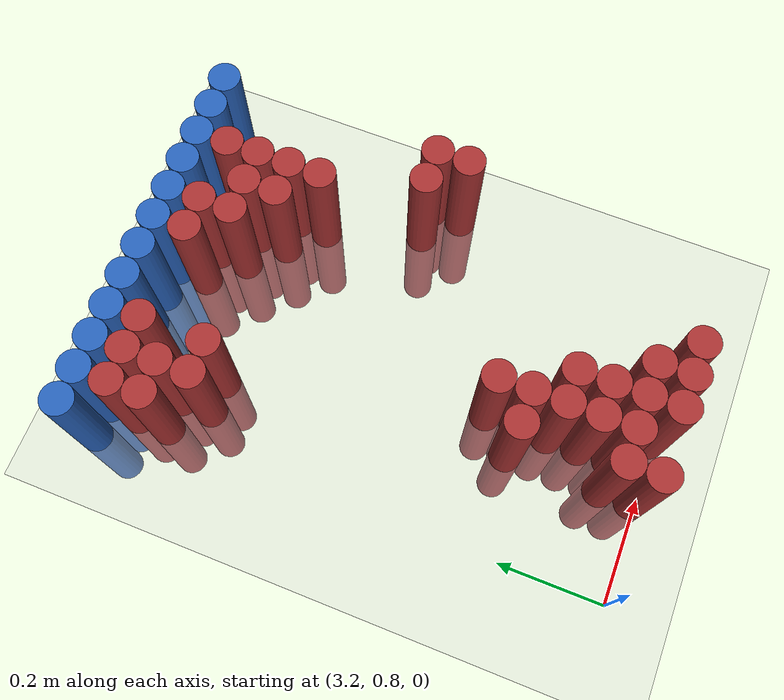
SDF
<sdf version="1.6">
 <world name="default">
  <model name="ground_plane">
   <static>1</static>
   <link name="link">
    <collision name="collision">
     <geometry><plane><normal>0 0 1</normal><size>100 100</size></plane></geometry>
     <surface><friction><ode><mu>100</mu><mu2>50</mu2></ode></friction></surface>
    </collision>
    <visual name="visual">
     <cast_shadows>0</cast_shadows>
     <geometry><plane><normal>0 0 1</normal><size>100 100</size></plane></geometry>
     <material>
      <script><uri>file://media/materials/scripts/gazebo.material</uri><name>Gazebo/Grey</name></script>
     </material>
    </visual>
   </link>
  </model>
  <model name="unit_cylinder_113">
   <static>1</static>
   <pose>3.150000 1.770000 0.000000 0.000000 0.000000 0.000000</pose>
   <link name="link">
    <inertial>
     <mass>1</mass>
     <inertia><ixx>0.145833</ixx><ixy>0</ixy><ixz>0</ixz><iyy>0.145833</iyy><iyz>0</iyz><izz>0.125</izz></inertia>
    </inertial>
    <collision name="collision">
     <geometry><cylinder><radius>0.030000</radius><length>0.5</length></cylinder></geometry>
    </collision>
    <visual name="visual">
     <geometry><cylinder><radius>0.030000</radius><length>0.5</length></cylinder></geometry>
     <material>
      <ambient>0.152000 0.379000 0.720000 1</ambient>
      <diffuse>0.152000 0.379000 0.720000 1</diffuse>
     </material>
     <material>
      <script><name>Gazebo/Grey</name><uri>file://media/materials/scripts/gazebo.material</uri></script>
     </material>
    </visual>
   </link>
  </model>
  <model name="unit_cylinder_114">
   <static>1</static>
   <pose>3.210000 1.770000 0.000000 0.000000 0.000000 0.000000</pose>
   <link name="link">
    <inertial>
     <mass>1</mass>
     <inertia><ixx>0.145833</ixx><ixy>0</ixy><ixz>0</ixz><iyy>0.145833</iyy><iyz>0</iyz><izz>0.125</izz></inertia>
    </inertial>
    <collision name="collision">
     <geometry><cylinder><radius>0.030000</radius><length>0.5</length></cylinder></geometry>
    </collision>
    <visual name="visual">
     <geometry><cylinder><radius>0.030000</radius><length>0.5</length></cylinder></geometry>
     <material>
      <ambient>0.152000 0.379000 0.720000 1</ambient>
      <diffuse>0.152000 0.379000 0.720000 1</diffuse>
     </material>
     <material>
      <script><name>Gazebo/Grey</name><uri>file://media/materials/scripts/gazebo.material</uri></script>
     </material>
    </visual>
   </link>
  </model>
  <model name="unit_cylinder_115">
   <static>1</static>
   <pose>3.270000 1.770000 0.000000 0.000000 0.000000 0.000000</pose>
   <link name="link">
    <inertial>
     <mass>1</mass>
     <inertia><ixx>0.145833</ixx><ixy>0</ixy><ixz>0</ixz><iyy>0.145833</iyy><iyz>0</iyz><izz>0.125</izz></inertia>
    </inertial>
    <collision name="collision">
     <geometry><cylinder><radius>0.030000</radius><length>0.5</length></cylinder></geometry>
    </collision>
    <visual name="visual">
     <geometry><cylinder><radius>0.030000</radius><length>0.5</length></cylinder></geometry>
     <material>
      <ambient>0.152000 0.379000 0.720000 1</ambient>
      <diffuse>0.152000 0.379000 0.720000 1</diffuse>
     </material>
     <material>
      <script><name>Gazebo/Grey</name><uri>file://media/materials/scripts/gazebo.material</uri></script>
     </material>
    </visual>
   </link>
  </model>
  <model name="unit_cylinder_116">
   <static>1</static>
   <pose>3.330000 1.770000 0.000000 0.000000 0.000000 0.000000</pose>
   <link name="link">
    <inertial>
     <mass>1</mass>
     <inertia><ixx>0.145833</ixx><ixy>0</ixy><ixz>0</ixz><iyy>0.145833</iyy><iyz>0</iyz><izz>0.125</izz></inertia>
    </inertial>
    <collision name="collision">
     <geometry><cylinder><radius>0.030000</radius><length>0.5</length></cylinder></geometry>
    </collision>
    <visual name="visual">
     <geometry><cylinder><radius>0.030000</radius><length>0.5</length></cylinder></geometry>
     <material>
      <ambient>0.152000 0.379000 0.720000 1</ambient>
      <diffuse>0.152000 0.379000 0.720000 1</diffuse>
     </material>
     <material>
      <script><name>Gazebo/Grey</name><uri>file://media/materials/scripts/gazebo.material</uri></script>
     </material>
    </visual>
   </link>
  </model>
  <model name="unit_cylinder_117">
   <static>1</static>
   <pose>3.390000 1.770000 0.000000 0.000000 0.000000 0.000000</pose>
   <link name="link">
    <inertial>
     <mass>1</mass>
     <inertia><ixx>0.145833</ixx><ixy>0</ixy><ixz>0</ixz><iyy>0.145833</iyy><iyz>0</iyz><izz>0.125</izz></inertia>
    </inertial>
    <collision name="collision">
     <geometry><cylinder><radius>0.030000</radius><length>0.5</length></cylinder></geometry>
    </collision>
    <visual name="visual">
     <geometry><cylinder><radius>0.030000</radius><length>0.5</length></cylinder></geometry>
     <material>
      <ambient>0.152000 0.379000 0.720000 1</ambient>
      <diffuse>0.152000 0.379000 0.720000 1</diffuse>
     </material>
     <material>
      <script><name>Gazebo/Grey</name><uri>file://media/materials/scripts/gazebo.material</uri></script>
     </material>
    </visual>
   </link>
  </model>
  <model name="unit_cylinder_118">
   <static>1</static>
   <pose>3.450000 1.770000 0.000000 0.000000 0.000000 0.000000</pose>
   <link name="link">
    <inertial>
     <mass>1</mass>
     <inertia><ixx>0.145833</ixx><ixy>0</ixy><ixz>0</ixz><iyy>0.145833</iyy><iyz>0</iyz><izz>0.125</izz></inertia>
    </inertial>
    <collision name="collision">
     <geometry><cylinder><radius>0.030000</radius><length>0.5</length></cylinder></geometry>
    </collision>
    <visual name="visual">
     <geometry><cylinder><radius>0.030000</radius><length>0.5</length></cylinder></geometry>
     <material>
      <ambient>0.152000 0.379000 0.720000 1</ambient>
      <diffuse>0.152000 0.379000 0.720000 1</diffuse>
     </material>
     <material>
      <script><name>Gazebo/Grey</name><uri>file://media/materials/scripts/gazebo.material</uri></script>
     </material>
    </visual>
   </link>
  </model>
  <model name="unit_cylinder_119">
   <static>1</static>
   <pose>3.510000 1.770000 0.000000 0.000000 0.000000 0.000000</pose>
   <link name="link">
    <inertial>
     <mass>1</mass>
     <inertia><ixx>0.145833</ixx><ixy>0</ixy><ixz>0</ixz><iyy>0.145833</iyy><iyz>0</iyz><izz>0.125</izz></inertia>
    </inertial>
    <collision name="collision">
     <geometry><cylinder><radius>0.030000</radius><length>0.5</length></cylinder></geometry>
    </collision>
    <visual name="visual">
     <geometry><cylinder><radius>0.030000</radius><length>0.5</length></cylinder></geometry>
     <material>
      <ambient>0.152000 0.379000 0.720000 1</ambient>
      <diffuse>0.152000 0.379000 0.720000 1</diffuse>
     </material>
     <material>
      <script><name>Gazebo/Grey</name><uri>file://media/materials/scripts/gazebo.material</uri></script>
     </material>
    </visual>
   </link>
  </model>
  <model name="unit_cylinder_120">
   <static>1</static>
   <pose>3.570000 1.770000 0.000000 0.000000 0.000000 0.000000</pose>
   <link name="link">
    <inertial>
     <mass>1</mass>
     <inertia><ixx>0.145833</ixx><ixy>0</ixy><ixz>0</ixz><iyy>0.145833</iyy><iyz>0</iyz><izz>0.125</izz></inertia>
    </inertial>
    <collision name="collision">
     <geometry><cylinder><radius>0.030000</radius><length>0.5</length></cylinder></geometry>
    </collision>
    <visual name="visual">
     <geometry><cylinder><radius>0.030000</radius><length>0.5</length></cylinder></geometry>
     <material>
      <ambient>0.152000 0.379000 0.720000 1</ambient>
      <diffuse>0.152000 0.379000 0.720000 1</diffuse>
     </material>
     <material>
      <script><name>Gazebo/Grey</name><uri>file://media/materials/scripts/gazebo.material</uri></script>
     </material>
    </visual>
   </link>
  </model>
  <model name="unit_cylinder_121">
   <static>1</static>
   <pose>3.630000 1.770000 0.000000 0.000000 0.000000 0.000000</pose>
   <link name="link">
    <inertial>
     <mass>1</mass>
     <inertia><ixx>0.145833</ixx><ixy>0</ixy><ixz>0</ixz><iyy>0.145833</iyy><iyz>0</iyz><izz>0.125</izz></inertia>
    </inertial>
    <collision name="collision">
     <geometry><cylinder><radius>0.030000</radius><length>0.5</length></cylinder></geometry>
    </collision>
    <visual name="visual">
     <geometry><cylinder><radius>0.030000</radius><length>0.5</length></cylinder></geometry>
     <material>
      <ambient>0.152000 0.379000 0.720000 1</ambient>
      <diffuse>0.152000 0.379000 0.720000 1</diffuse>
     </material>
     <material>
      <script><name>Gazebo/Grey</name><uri>file://media/materials/scripts/gazebo.material</uri></script>
     </material>
    </visual>
   </link>
  </model>
  <model name="unit_cylinder_122">
   <static>1</static>
   <pose>3.690000 1.770000 0.000000 0.000000 0.000000 0.000000</pose>
   <link name="link">
    <inertial>
     <mass>1</mass>
     <inertia><ixx>0.145833</ixx><ixy>0</ixy><ixz>0</ixz><iyy>0.145833</iyy><iyz>0</iyz><izz>0.125</izz></inertia>
    </inertial>
    <collision name="collision">
     <geometry><cylinder><radius>0.030000</radius><length>0.5</length></cylinder></geometry>
    </collision>
    <visual name="visual">
     <geometry><cylinder><radius>0.030000</radius><length>0.5</length></cylinder></geometry>
     <material>
      <ambient>0.152000 0.379000 0.720000 1</ambient>
      <diffuse>0.152000 0.379000 0.720000 1</diffuse>
     </material>
     <material>
      <script><name>Gazebo/Grey</name><uri>file://media/materials/scripts/gazebo.material</uri></script>
     </material>
    </visual>
   </link>
  </model>
  <model name="unit_cylinder_123">
   <static>1</static>
   <pose>3.750000 1.770000 0.000000 0.000000 0.000000 0.000000</pose>
   <link name="link">
    <inertial>
     <mass>1</mass>
     <inertia><ixx>0.145833</ixx><ixy>0</ixy><ixz>0</ixz><iyy>0.145833</iyy><iyz>0</iyz><izz>0.125</izz></inertia>
    </inertial>
    <collision name="collision">
     <geometry><cylinder><radius>0.030000</radius><length>0.5</length></cylinder></geometry>
    </collision>
    <visual name="visual">
     <geometry><cylinder><radius>0.030000</radius><length>0.5</length></cylinder></geometry>
     <material>
      <ambient>0.152000 0.379000 0.720000 1</ambient>
      <diffuse>0.152000 0.379000 0.720000 1</diffuse>
     </material>
     <material>
      <script><name>Gazebo/Grey</name><uri>file://media/materials/scripts/gazebo.material</uri></script>
     </material>
    </visual>
   </link>
  </model>
  <model name="unit_cylinder_124">
   <static>1</static>
   <pose>3.810000 1.770000 0.000000 0.000000 0.000000 0.000000</pose>
   <link name="link">
    <inertial>
     <mass>1</mass>
     <inertia><ixx>0.145833</ixx><ixy>0</ixy><ixz>0</ixz><iyy>0.145833</iyy><iyz>0</iyz><izz>0.125</izz></inertia>
    </inertial>
    <collision name="collision">
     <geometry><cylinder><radius>0.030000</radius><length>0.5</length></cylinder></geometry>
    </collision>
    <visual name="visual">
     <geometry><cylinder><radius>0.030000</radius><length>0.5</length></cylinder></geometry>
     <material>
      <ambient>0.152000 0.379000 0.720000 1</ambient>
      <diffuse>0.152000 0.379000 0.720000 1</diffuse>
     </material>
     <material>
      <script><name>Gazebo/Grey</name><uri>file://media/materials/scripts/gazebo.material</uri></script>
     </material>
    </visual>
   </link>
  </model>
  <model name="unit_cylinder_136">
   <static>1</static>
   <pose>3.210000 1.710000 0.000000 0.000000 0.000000 0.000000</pose>
   <link name="link">
    <inertial>
     <mass>1</mass>
     <inertia><ixx>0.145833</ixx><ixy>0</ixy><ixz>0</ixz><iyy>0.145833</iyy><iyz>0</iyz><izz>0.125</izz></inertia>
    </inertial>
    <collision name="collision">
     <geometry><cylinder><radius>0.030000</radius><length>0.5</length></cylinder></geometry>
    </collision>
    <visual name="visual">
     <geometry><cylinder><radius>0.030000</radius><length>0.5</length></cylinder></geometry>
     <material>
      <ambient>0.648000 0.192000 0.192000 1</ambient>
      <diffuse>0.648000 0.192000 0.192000 1</diffuse>
     </material>
     <material>
      <script><name>Gazebo/Grey</name><uri>file://media/materials/scripts/gazebo.material</uri></script>
     </material>
    </visual>
   </link>
  </model>
  <model name="unit_cylinder_137">
   <static>1</static>
   <pose>3.270000 1.710000 0.000000 0.000000 0.000000 0.000000</pose>
   <link name="link">
    <inertial>
     <mass>1</mass>
     <inertia><ixx>0.145833</ixx><ixy>0</ixy><ixz>0</ixz><iyy>0.145833</iyy><iyz>0</iyz><izz>0.125</izz></inertia>
    </inertial>
    <collision name="collision">
     <geometry><cylinder><radius>0.030000</radius><length>0.5</length></cylinder></geometry>
    </collision>
    <visual name="visual">
     <geometry><cylinder><radius>0.030000</radius><length>0.5</length></cylinder></geometry>
     <material>
      <ambient>0.648000 0.192000 0.192000 1</ambient>
      <diffuse>0.648000 0.192000 0.192000 1</diffuse>
     </material>
     <material>
      <script><name>Gazebo/Grey</name><uri>file://media/materials/scripts/gazebo.material</uri></script>
     </material>
    </visual>
   </link>
  </model>
  <model name="unit_cylinder_138">
   <static>1</static>
   <pose>3.330000 1.710000 0.000000 0.000000 0.000000 0.000000</pose>
   <link name="link">
    <inertial>
     <mass>1</mass>
     <inertia><ixx>0.145833</ixx><ixy>0</ixy><ixz>0</ixz><iyy>0.145833</iyy><iyz>0</iyz><izz>0.125</izz></inertia>
    </inertial>
    <collision name="collision">
     <geometry><cylinder><radius>0.030000</radius><length>0.5</length></cylinder></geometry>
    </collision>
    <visual name="visual">
     <geometry><cylinder><radius>0.030000</radius><length>0.5</length></cylinder></geometry>
     <material>
      <ambient>0.648000 0.192000 0.192000 1</ambient>
      <diffuse>0.648000 0.192000 0.192000 1</diffuse>
     </material>
     <material>
      <script><name>Gazebo/Grey</name><uri>file://media/materials/scripts/gazebo.material</uri></script>
     </material>
    </visual>
   </link>
  </model>
  <model name="unit_cylinder_139">
   <static>1</static>
   <pose>3.510000 1.710000 0.000000 0.000000 0.000000 0.000000</pose>
   <link name="link">
    <inertial>
     <mass>1</mass>
     <inertia><ixx>0.145833</ixx><ixy>0</ixy><ixz>0</ixz><iyy>0.145833</iyy><iyz>0</iyz><izz>0.125</izz></inertia>
    </inertial>
    <collision name="collision">
     <geometry><cylinder><radius>0.030000</radius><length>0.5</length></cylinder></geometry>
    </collision>
    <visual name="visual">
     <geometry><cylinder><radius>0.030000</radius><length>0.5</length></cylinder></geometry>
     <material>
      <ambient>0.648000 0.192000 0.192000 1</ambient>
      <diffuse>0.648000 0.192000 0.192000 1</diffuse>
     </material>
     <material>
      <script><name>Gazebo/Grey</name><uri>file://media/materials/scripts/gazebo.material</uri></script>
     </material>
    </visual>
   </link>
  </model>
  <model name="unit_cylinder_140">
   <static>1</static>
   <pose>3.570000 1.710000 0.000000 0.000000 0.000000 0.000000</pose>
   <link name="link">
    <inertial>
     <mass>1</mass>
     <inertia><ixx>0.145833</ixx><ixy>0</ixy><ixz>0</ixz><iyy>0.145833</iyy><iyz>0</iyz><izz>0.125</izz></inertia>
    </inertial>
    <collision name="collision">
     <geometry><cylinder><radius>0.030000</radius><length>0.5</length></cylinder></geometry>
    </collision>
    <visual name="visual">
     <geometry><cylinder><radius>0.030000</radius><length>0.5</length></cylinder></geometry>
     <material>
      <ambient>0.648000 0.192000 0.192000 1</ambient>
      <diffuse>0.648000 0.192000 0.192000 1</diffuse>
     </material>
     <material>
      <script><name>Gazebo/Grey</name><uri>file://media/materials/scripts/gazebo.material</uri></script>
     </material>
    </visual>
   </link>
  </model>
  <model name="unit_cylinder_141">
   <static>1</static>
   <pose>3.690000 1.710000 0.000000 0.000000 0.000000 0.000000</pose>
   <link name="link">
    <inertial>
     <mass>1</mass>
     <inertia><ixx>0.145833</ixx><ixy>0</ixy><ixz>0</ixz><iyy>0.145833</iyy><iyz>0</iyz><izz>0.125</izz></inertia>
    </inertial>
    <collision name="collision">
     <geometry><cylinder><radius>0.030000</radius><length>0.5</length></cylinder></geometry>
    </collision>
    <visual name="visual">
     <geometry><cylinder><radius>0.030000</radius><length>0.5</length></cylinder></geometry>
     <material>
      <ambient>0.648000 0.192000 0.192000 1</ambient>
      <diffuse>0.648000 0.192000 0.192000 1</diffuse>
     </material>
     <material>
      <script><name>Gazebo/Grey</name><uri>file://media/materials/scripts/gazebo.material</uri></script>
     </material>
    </visual>
   </link>
  </model>
  <model name="unit_cylinder_146">
   <static>1</static>
   <pose>3.210000 1.650000 0.000000 0.000000 0.000000 0.000000</pose>
   <link name="link">
    <inertial>
     <mass>1</mass>
     <inertia><ixx>0.145833</ixx><ixy>0</ixy><ixz>0</ixz><iyy>0.145833</iyy><iyz>0</iyz><izz>0.125</izz></inertia>
    </inertial>
    <collision name="collision">
     <geometry><cylinder><radius>0.030000</radius><length>0.5</length></cylinder></geometry>
    </collision>
    <visual name="visual">
     <geometry><cylinder><radius>0.030000</radius><length>0.5</length></cylinder></geometry>
     <material>
      <ambient>0.648000 0.192000 0.192000 1</ambient>
      <diffuse>0.648000 0.192000 0.192000 1</diffuse>
     </material>
     <material>
      <script><name>Gazebo/Grey</name><uri>file://media/materials/scripts/gazebo.material</uri></script>
     </material>
    </visual>
   </link>
  </model>
  <model name="unit_cylinder_147">
   <static>1</static>
   <pose>3.270000 1.650000 0.000000 0.000000 0.000000 0.000000</pose>
   <link name="link">
    <inertial>
     <mass>1</mass>
     <inertia><ixx>0.145833</ixx><ixy>0</ixy><ixz>0</ixz><iyy>0.145833</iyy><iyz>0</iyz><izz>0.125</izz></inertia>
    </inertial>
    <collision name="collision">
     <geometry><cylinder><radius>0.030000</radius><length>0.5</length></cylinder></geometry>
    </collision>
    <visual name="visual">
     <geometry><cylinder><radius>0.030000</radius><length>0.5</length></cylinder></geometry>
     <material>
      <ambient>0.648000 0.192000 0.192000 1</ambient>
      <diffuse>0.648000 0.192000 0.192000 1</diffuse>
     </material>
     <material>
      <script><name>Gazebo/Grey</name><uri>file://media/materials/scripts/gazebo.material</uri></script>
     </material>
    </visual>
   </link>
  </model>
  <model name="unit_cylinder_148">
   <static>1</static>
   <pose>3.570000 1.650000 0.000000 0.000000 0.000000 0.000000</pose>
   <link name="link">
    <inertial>
     <mass>1</mass>
     <inertia><ixx>0.145833</ixx><ixy>0</ixy><ixz>0</ixz><iyy>0.145833</iyy><iyz>0</iyz><izz>0.125</izz></inertia>
    </inertial>
    <collision name="collision">
     <geometry><cylinder><radius>0.030000</radius><length>0.5</length></cylinder></geometry>
    </collision>
    <visual name="visual">
     <geometry><cylinder><radius>0.030000</radius><length>0.5</length></cylinder></geometry>
     <material>
      <ambient>0.648000 0.192000 0.192000 1</ambient>
      <diffuse>0.648000 0.192000 0.192000 1</diffuse>
     </material>
     <material>
      <script><name>Gazebo/Grey</name><uri>file://media/materials/scripts/gazebo.material</uri></script>
     </material>
    </visual>
   </link>
  </model>
  <model name="unit_cylinder_149">
   <static>1</static>
   <pose>3.630000 1.650000 0.000000 0.000000 0.000000 0.000000</pose>
   <link name="link">
    <inertial>
     <mass>1</mass>
     <inertia><ixx>0.145833</ixx><ixy>0</ixy><ixz>0</ixz><iyy>0.145833</iyy><iyz>0</iyz><izz>0.125</izz></inertia>
    </inertial>
    <collision name="collision">
     <geometry><cylinder><radius>0.030000</radius><length>0.5</length></cylinder></geometry>
    </collision>
    <visual name="visual">
     <geometry><cylinder><radius>0.030000</radius><length>0.5</length></cylinder></geometry>
     <material>
      <ambient>0.648000 0.192000 0.192000 1</ambient>
      <diffuse>0.648000 0.192000 0.192000 1</diffuse>
     </material>
     <material>
      <script><name>Gazebo/Grey</name><uri>file://media/materials/scripts/gazebo.material</uri></script>
     </material>
    </visual>
   </link>
  </model>
  <model name="unit_cylinder_150">
   <static>1</static>
   <pose>3.690000 1.650000 0.000000 0.000000 0.000000 0.000000</pose>
   <link name="link">
    <inertial>
     <mass>1</mass>
     <inertia><ixx>0.145833</ixx><ixy>0</ixy><ixz>0</ixz><iyy>0.145833</iyy><iyz>0</iyz><izz>0.125</izz></inertia>
    </inertial>
    <collision name="collision">
     <geometry><cylinder><radius>0.030000</radius><length>0.5</length></cylinder></geometry>
    </collision>
    <visual name="visual">
     <geometry><cylinder><radius>0.030000</radius><length>0.5</length></cylinder></geometry>
     <material>
      <ambient>0.648000 0.192000 0.192000 1</ambient>
      <diffuse>0.648000 0.192000 0.192000 1</diffuse>
     </material>
     <material>
      <script><name>Gazebo/Grey</name><uri>file://media/materials/scripts/gazebo.material</uri></script>
     </material>
    </visual>
   </link>
  </model>
  <model name="unit_cylinder_152">
   <static>1</static>
   <pose>3.270000 1.590000 0.000000 0.000000 0.000000 0.000000</pose>
   <link name="link">
    <inertial>
     <mass>1</mass>
     <inertia><ixx>0.145833</ixx><ixy>0</ixy><ixz>0</ixz><iyy>0.145833</iyy><iyz>0</iyz><izz>0.125</izz></inertia>
    </inertial>
    <collision name="collision">
     <geometry><cylinder><radius>0.030000</radius><length>0.5</length></cylinder></geometry>
    </collision>
    <visual name="visual">
     <geometry><cylinder><radius>0.030000</radius><length>0.5</length></cylinder></geometry>
     <material>
      <ambient>0.648000 0.192000 0.192000 1</ambient>
      <diffuse>0.648000 0.192000 0.192000 1</diffuse>
     </material>
     <material>
      <script><name>Gazebo/Grey</name><uri>file://media/materials/scripts/gazebo.material</uri></script>
     </material>
    </visual>
   </link>
  </model>
  <model name="unit_cylinder_153">
   <static>1</static>
   <pose>3.330000 1.590000 0.000000 0.000000 0.000000 0.000000</pose>
   <link name="link">
    <inertial>
     <mass>1</mass>
     <inertia><ixx>0.145833</ixx><ixy>0</ixy><ixz>0</ixz><iyy>0.145833</iyy><iyz>0</iyz><izz>0.125</izz></inertia>
    </inertial>
    <collision name="collision">
     <geometry><cylinder><radius>0.030000</radius><length>0.5</length></cylinder></geometry>
    </collision>
    <visual name="visual">
     <geometry><cylinder><radius>0.030000</radius><length>0.5</length></cylinder></geometry>
     <material>
      <ambient>0.648000 0.192000 0.192000 1</ambient>
      <diffuse>0.648000 0.192000 0.192000 1</diffuse>
     </material>
     <material>
      <script><name>Gazebo/Grey</name><uri>file://media/materials/scripts/gazebo.material</uri></script>
     </material>
    </visual>
   </link>
  </model>
  <model name="unit_cylinder_154">
   <static>1</static>
   <pose>3.630000 1.590000 0.000000 0.000000 0.000000 0.000000</pose>
   <link name="link">
    <inertial>
     <mass>1</mass>
     <inertia><ixx>0.145833</ixx><ixy>0</ixy><ixz>0</ixz><iyy>0.145833</iyy><iyz>0</iyz><izz>0.125</izz></inertia>
    </inertial>
    <collision name="collision">
     <geometry><cylinder><radius>0.030000</radius><length>0.5</length></cylinder></geometry>
    </collision>
    <visual name="visual">
     <geometry><cylinder><radius>0.030000</radius><length>0.5</length></cylinder></geometry>
     <material>
      <ambient>0.648000 0.192000 0.192000 1</ambient>
      <diffuse>0.648000 0.192000 0.192000 1</diffuse>
     </material>
     <material>
      <script><name>Gazebo/Grey</name><uri>file://media/materials/scripts/gazebo.material</uri></script>
     </material>
    </visual>
   </link>
  </model>
  <model name="unit_cylinder_155">
   <static>1</static>
   <pose>3.690000 1.590000 0.000000 0.000000 0.000000 0.000000</pose>
   <link name="link">
    <inertial>
     <mass>1</mass>
     <inertia><ixx>0.145833</ixx><ixy>0</ixy><ixz>0</ixz><iyy>0.145833</iyy><iyz>0</iyz><izz>0.125</izz></inertia>
    </inertial>
    <collision name="collision">
     <geometry><cylinder><radius>0.030000</radius><length>0.5</length></cylinder></geometry>
    </collision>
    <visual name="visual">
     <geometry><cylinder><radius>0.030000</radius><length>0.5</length></cylinder></geometry>
     <material>
      <ambient>0.648000 0.192000 0.192000 1</ambient>
      <diffuse>0.648000 0.192000 0.192000 1</diffuse>
     </material>
     <material>
      <script><name>Gazebo/Grey</name><uri>file://media/materials/scripts/gazebo.material</uri></script>
     </material>
    </visual>
   </link>
  </model>
  <model name="unit_cylinder_158">
   <static>1</static>
   <pose>3.690000 1.530000 0.000000 0.000000 0.000000 0.000000</pose>
   <link name="link">
    <inertial>
     <mass>1</mass>
     <inertia><ixx>0.145833</ixx><ixy>0</ixy><ixz>0</ixz><iyy>0.145833</iyy><iyz>0</iyz><izz>0.125</izz></inertia>
    </inertial>
    <collision name="collision">
     <geometry><cylinder><radius>0.030000</radius><length>0.5</length></cylinder></geometry>
    </collision>
    <visual name="visual">
     <geometry><cylinder><radius>0.030000</radius><length>0.5</length></cylinder></geometry>
     <material>
      <ambient>0.648000 0.192000 0.192000 1</ambient>
      <diffuse>0.648000 0.192000 0.192000 1</diffuse>
     </material>
     <material>
      <script><name>Gazebo/Grey</name><uri>file://media/materials/scripts/gazebo.material</uri></script>
     </material>
    </visual>
   </link>
  </model>
  <model name="unit_cylinder_168">
   <static>1</static>
   <pose>3.750000 1.350000 0.000000 0.000000 0.000000 0.000000</pose>
   <link name="link">
    <inertial>
     <mass>1</mass>
     <inertia><ixx>0.145833</ixx><ixy>0</ixy><ixz>0</ixz><iyy>0.145833</iyy><iyz>0</iyz><izz>0.125</izz></inertia>
    </inertial>
    <collision name="collision">
     <geometry><cylinder><radius>0.030000</radius><length>0.5</length></cylinder></geometry>
    </collision>
    <visual name="visual">
     <geometry><cylinder><radius>0.030000</radius><length>0.5</length></cylinder></geometry>
     <material>
      <ambient>0.648000 0.192000 0.192000 1</ambient>
      <diffuse>0.648000 0.192000 0.192000 1</diffuse>
     </material>
     <material>
      <script><name>Gazebo/Grey</name><uri>file://media/materials/scripts/gazebo.material</uri></script>
     </material>
    </visual>
   </link>
  </model>
  <model name="unit_cylinder_169">
   <static>1</static>
   <pose>3.810000 1.350000 0.000000 0.000000 0.000000 0.000000</pose>
   <link name="link">
    <inertial>
     <mass>1</mass>
     <inertia><ixx>0.145833</ixx><ixy>0</ixy><ixz>0</ixz><iyy>0.145833</iyy><iyz>0</iyz><izz>0.125</izz></inertia>
    </inertial>
    <collision name="collision">
     <geometry><cylinder><radius>0.030000</radius><length>0.5</length></cylinder></geometry>
    </collision>
    <visual name="visual">
     <geometry><cylinder><radius>0.030000</radius><length>0.5</length></cylinder></geometry>
     <material>
      <ambient>0.648000 0.192000 0.192000 1</ambient>
      <diffuse>0.648000 0.192000 0.192000 1</diffuse>
     </material>
     <material>
      <script><name>Gazebo/Grey</name><uri>file://media/materials/scripts/gazebo.material</uri></script>
     </material>
    </visual>
   </link>
  </model>
  <model name="unit_cylinder_173">
   <static>1</static>
   <pose>3.810000 1.290000 0.000000 0.000000 0.000000 0.000000</pose>
   <link name="link">
    <inertial>
     <mass>1</mass>
     <inertia><ixx>0.145833</ixx><ixy>0</ixy><ixz>0</ixz><iyy>0.145833</iyy><iyz>0</iyz><izz>0.125</izz></inertia>
    </inertial>
    <collision name="collision">
     <geometry><cylinder><radius>0.030000</radius><length>0.5</length></cylinder></geometry>
    </collision>
    <visual name="visual">
     <geometry><cylinder><radius>0.030000</radius><length>0.5</length></cylinder></geometry>
     <material>
      <ambient>0.648000 0.192000 0.192000 1</ambient>
      <diffuse>0.648000 0.192000 0.192000 1</diffuse>
     </material>
     <material>
      <script><name>Gazebo/Grey</name><uri>file://media/materials/scripts/gazebo.material</uri></script>
     </material>
    </visual>
   </link>
  </model>
  <model name="unit_cylinder_187">
   <static>1</static>
   <pose>3.450000 1.110000 0.000000 0.000000 0.000000 0.000000</pose>
   <link name="link">
    <inertial>
     <mass>1</mass>
     <inertia><ixx>0.145833</ixx><ixy>0</ixy><ixz>0</ixz><iyy>0.145833</iyy><iyz>0</iyz><izz>0.125</izz></inertia>
    </inertial>
    <collision name="collision">
     <geometry><cylinder><radius>0.030000</radius><length>0.5</length></cylinder></geometry>
    </collision>
    <visual name="visual">
     <geometry><cylinder><radius>0.030000</radius><length>0.5</length></cylinder></geometry>
     <material>
      <ambient>0.648000 0.192000 0.192000 1</ambient>
      <diffuse>0.648000 0.192000 0.192000 1</diffuse>
     </material>
     <material>
      <script><name>Gazebo/Grey</name><uri>file://media/materials/scripts/gazebo.material</uri></script>
     </material>
    </visual>
   </link>
  </model>
  <model name="unit_cylinder_192">
   <static>1</static>
   <pose>3.390000 1.050000 0.000000 0.000000 0.000000 0.000000</pose>
   <link name="link">
    <inertial>
     <mass>1</mass>
     <inertia><ixx>0.145833</ixx><ixy>0</ixy><ixz>0</ixz><iyy>0.145833</iyy><iyz>0</iyz><izz>0.125</izz></inertia>
    </inertial>
    <collision name="collision">
     <geometry><cylinder><radius>0.030000</radius><length>0.5</length></cylinder></geometry>
    </collision>
    <visual name="visual">
     <geometry><cylinder><radius>0.030000</radius><length>0.5</length></cylinder></geometry>
     <material>
      <ambient>0.648000 0.192000 0.192000 1</ambient>
      <diffuse>0.648000 0.192000 0.192000 1</diffuse>
     </material>
     <material>
      <script><name>Gazebo/Grey</name><uri>file://media/materials/scripts/gazebo.material</uri></script>
     </material>
    </visual>
   </link>
  </model>
  <model name="unit_cylinder_193">
   <static>1</static>
   <pose>3.450000 1.050000 0.000000 0.000000 0.000000 0.000000</pose>
   <link name="link">
    <inertial>
     <mass>1</mass>
     <inertia><ixx>0.145833</ixx><ixy>0</ixy><ixz>0</ixz><iyy>0.145833</iyy><iyz>0</iyz><izz>0.125</izz></inertia>
    </inertial>
    <collision name="collision">
     <geometry><cylinder><radius>0.030000</radius><length>0.5</length></cylinder></geometry>
    </collision>
    <visual name="visual">
     <geometry><cylinder><radius>0.030000</radius><length>0.5</length></cylinder></geometry>
     <material>
      <ambient>0.648000 0.192000 0.192000 1</ambient>
      <diffuse>0.648000 0.192000 0.192000 1</diffuse>
     </material>
     <material>
      <script><name>Gazebo/Grey</name><uri>file://media/materials/scripts/gazebo.material</uri></script>
     </material>
    </visual>
   </link>
  </model>
  <model name="unit_cylinder_199">
   <static>1</static>
   <pose>3.450000 0.990000 0.000000 0.000000 0.000000 0.000000</pose>
   <link name="link">
    <inertial>
     <mass>1</mass>
     <inertia><ixx>0.145833</ixx><ixy>0</ixy><ixz>0</ixz><iyy>0.145833</iyy><iyz>0</iyz><izz>0.125</izz></inertia>
    </inertial>
    <collision name="collision">
     <geometry><cylinder><radius>0.030000</radius><length>0.5</length></cylinder></geometry>
    </collision>
    <visual name="visual">
     <geometry><cylinder><radius>0.030000</radius><length>0.5</length></cylinder></geometry>
     <material>
      <ambient>0.648000 0.192000 0.192000 1</ambient>
      <diffuse>0.648000 0.192000 0.192000 1</diffuse>
     </material>
     <material>
      <script><name>Gazebo/Grey</name><uri>file://media/materials/scripts/gazebo.material</uri></script>
     </material>
    </visual>
   </link>
  </model>
  <model name="unit_cylinder_200">
   <static>1</static>
   <pose>3.510000 0.990000 0.000000 0.000000 0.000000 0.000000</pose>
   <link name="link">
    <inertial>
     <mass>1</mass>
     <inertia><ixx>0.145833</ixx><ixy>0</ixy><ixz>0</ixz><iyy>0.145833</iyy><iyz>0</iyz><izz>0.125</izz></inertia>
    </inertial>
    <collision name="collision">
     <geometry><cylinder><radius>0.030000</radius><length>0.5</length></cylinder></geometry>
    </collision>
    <visual name="visual">
     <geometry><cylinder><radius>0.030000</radius><length>0.5</length></cylinder></geometry>
     <material>
      <ambient>0.648000 0.192000 0.192000 1</ambient>
      <diffuse>0.648000 0.192000 0.192000 1</diffuse>
     </material>
     <material>
      <script><name>Gazebo/Grey</name><uri>file://media/materials/scripts/gazebo.material</uri></script>
     </material>
    </visual>
   </link>
  </model>
  <model name="unit_cylinder_204">
   <static>1</static>
   <pose>3.450000 0.930000 0.000000 0.000000 0.000000 0.000000</pose>
   <link name="link">
    <inertial>
     <mass>1</mass>
     <inertia><ixx>0.145833</ixx><ixy>0</ixy><ixz>0</ixz><iyy>0.145833</iyy><iyz>0</iyz><izz>0.125</izz></inertia>
    </inertial>
    <collision name="collision">
     <geometry><cylinder><radius>0.030000</radius><length>0.5</length></cylinder></geometry>
    </collision>
    <visual name="visual">
     <geometry><cylinder><radius>0.030000</radius><length>0.5</length></cylinder></geometry>
     <material>
      <ambient>0.648000 0.192000 0.192000 1</ambient>
      <diffuse>0.648000 0.192000 0.192000 1</diffuse>
     </material>
     <material>
      <script><name>Gazebo/Grey</name><uri>file://media/materials/scripts/gazebo.material</uri></script>
     </material>
    </visual>
   </link>
  </model>
  <model name="unit_cylinder_205">
   <static>1</static>
   <pose>3.510000 0.930000 0.000000 0.000000 0.000000 0.000000</pose>
   <link name="link">
    <inertial>
     <mass>1</mass>
     <inertia><ixx>0.145833</ixx><ixy>0</ixy><ixz>0</ixz><iyy>0.145833</iyy><iyz>0</iyz><izz>0.125</izz></inertia>
    </inertial>
    <collision name="collision">
     <geometry><cylinder><radius>0.030000</radius><length>0.5</length></cylinder></geometry>
    </collision>
    <visual name="visual">
     <geometry><cylinder><radius>0.030000</radius><length>0.5</length></cylinder></geometry>
     <material>
      <ambient>0.648000 0.192000 0.192000 1</ambient>
      <diffuse>0.648000 0.192000 0.192000 1</diffuse>
     </material>
     <material>
      <script><name>Gazebo/Grey</name><uri>file://media/materials/scripts/gazebo.material</uri></script>
     </material>
    </visual>
   </link>
  </model>
  <model name="unit_cylinder_209">
   <static>1</static>
   <pose>3.390000 0.870000 0.000000 0.000000 0.000000 0.000000</pose>
   <link name="link">
    <inertial>
     <mass>1</mass>
     <inertia><ixx>0.145833</ixx><ixy>0</ixy><ixz>0</ixz><iyy>0.145833</iyy><iyz>0</iyz><izz>0.125</izz></inertia>
    </inertial>
    <collision name="collision">
     <geometry><cylinder><radius>0.030000</radius><length>0.5</length></cylinder></geometry>
    </collision>
    <visual name="visual">
     <geometry><cylinder><radius>0.030000</radius><length>0.5</length></cylinder></geometry>
     <material>
      <ambient>0.648000 0.192000 0.192000 1</ambient>
      <diffuse>0.648000 0.192000 0.192000 1</diffuse>
     </material>
     <material>
      <script><name>Gazebo/Grey</name><uri>file://media/materials/scripts/gazebo.material</uri></script>
     </material>
    </visual>
   </link>
  </model>
  <model name="unit_cylinder_210">
   <static>1</static>
   <pose>3.450000 0.870000 0.000000 0.000000 0.000000 0.000000</pose>
   <link name="link">
    <inertial>
     <mass>1</mass>
     <inertia><ixx>0.145833</ixx><ixy>0</ixy><ixz>0</ixz><iyy>0.145833</iyy><iyz>0</iyz><izz>0.125</izz></inertia>
    </inertial>
    <collision name="collision">
     <geometry><cylinder><radius>0.030000</radius><length>0.5</length></cylinder></geometry>
    </collision>
    <visual name="visual">
     <geometry><cylinder><radius>0.030000</radius><length>0.5</length></cylinder></geometry>
     <material>
      <ambient>0.648000 0.192000 0.192000 1</ambient>
      <diffuse>0.648000 0.192000 0.192000 1</diffuse>
     </material>
     <material>
      <script><name>Gazebo/Grey</name><uri>file://media/materials/scripts/gazebo.material</uri></script>
     </material>
    </visual>
   </link>
  </model>
  <model name="unit_cylinder_211">
   <static>1</static>
   <pose>3.510000 0.870000 0.000000 0.000000 0.000000 0.000000</pose>
   <link name="link">
    <inertial>
     <mass>1</mass>
     <inertia><ixx>0.145833</ixx><ixy>0</ixy><ixz>0</ixz><iyy>0.145833</iyy><iyz>0</iyz><izz>0.125</izz></inertia>
    </inertial>
    <collision name="collision">
     <geometry><cylinder><radius>0.030000</radius><length>0.5</length></cylinder></geometry>
    </collision>
    <visual name="visual">
     <geometry><cylinder><radius>0.030000</radius><length>0.5</length></cylinder></geometry>
     <material>
      <ambient>0.648000 0.192000 0.192000 1</ambient>
      <diffuse>0.648000 0.192000 0.192000 1</diffuse>
     </material>
     <material>
      <script><name>Gazebo/Grey</name><uri>file://media/materials/scripts/gazebo.material</uri></script>
     </material>
    </visual>
   </link>
  </model>
  <model name="unit_cylinder_212">
   <static>1</static>
   <pose>3.570000 0.870000 0.000000 0.000000 0.000000 0.000000</pose>
   <link name="link">
    <inertial>
     <mass>1</mass>
     <inertia><ixx>0.145833</ixx><ixy>0</ixy><ixz>0</ixz><iyy>0.145833</iyy><iyz>0</iyz><izz>0.125</izz></inertia>
    </inertial>
    <collision name="collision">
     <geometry><cylinder><radius>0.030000</radius><length>0.5</length></cylinder></geometry>
    </collision>
    <visual name="visual">
     <geometry><cylinder><radius>0.030000</radius><length>0.5</length></cylinder></geometry>
     <material>
      <ambient>0.648000 0.192000 0.192000 1</ambient>
      <diffuse>0.648000 0.192000 0.192000 1</diffuse>
     </material>
     <material>
      <script><name>Gazebo/Grey</name><uri>file://media/materials/scripts/gazebo.material</uri></script>
     </material>
    </visual>
   </link>
  </model>
  <model name="unit_cylinder_213">
   <static>1</static>
   <pose>3.390000 0.810000 0.000000 0.000000 0.000000 0.000000</pose>
   <link name="link">
    <inertial>
     <mass>1</mass>
     <inertia><ixx>0.145833</ixx><ixy>0</ixy><ixz>0</ixz><iyy>0.145833</iyy><iyz>0</iyz><izz>0.125</izz></inertia>
    </inertial>
    <collision name="collision">
     <geometry><cylinder><radius>0.030000</radius><length>0.5</length></cylinder></geometry>
    </collision>
    <visual name="visual">
     <geometry><cylinder><radius>0.030000</radius><length>0.5</length></cylinder></geometry>
     <material>
      <ambient>0.648000 0.192000 0.192000 1</ambient>
      <diffuse>0.648000 0.192000 0.192000 1</diffuse>
     </material>
     <material>
      <script><name>Gazebo/Grey</name><uri>file://media/materials/scripts/gazebo.material</uri></script>
     </material>
    </visual>
   </link>
  </model>
  <model name="unit_cylinder_214">
   <static>1</static>
   <pose>3.510000 0.810000 0.000000 0.000000 0.000000 0.000000</pose>
   <link name="link">
    <inertial>
     <mass>1</mass>
     <inertia><ixx>0.145833</ixx><ixy>0</ixy><ixz>0</ixz><iyy>0.145833</iyy><iyz>0</iyz><izz>0.125</izz></inertia>
    </inertial>
    <collision name="collision">
     <geometry><cylinder><radius>0.030000</radius><length>0.5</length></cylinder></geometry>
    </collision>
    <visual name="visual">
     <geometry><cylinder><radius>0.030000</radius><length>0.5</length></cylinder></geometry>
     <material>
      <ambient>0.648000 0.192000 0.192000 1</ambient>
      <diffuse>0.648000 0.192000 0.192000 1</diffuse>
     </material>
     <material>
      <script><name>Gazebo/Grey</name><uri>file://media/materials/scripts/gazebo.material</uri></script>
     </material>
    </visual>
   </link>
  </model>
  <model name="unit_cylinder_215">
   <static>1</static>
   <pose>3.570000 0.810000 0.000000 0.000000 0.000000 0.000000</pose>
   <link name="link">
    <inertial>
     <mass>1</mass>
     <inertia><ixx>0.145833</ixx><ixy>0</ixy><ixz>0</ixz><iyy>0.145833</iyy><iyz>0</iyz><izz>0.125</izz></inertia>
    </inertial>
    <collision name="collision">
     <geometry><cylinder><radius>0.030000</radius><length>0.5</length></cylinder></geometry>
    </collision>
    <visual name="visual">
     <geometry><cylinder><radius>0.030000</radius><length>0.5</length></cylinder></geometry>
     <material>
      <ambient>0.648000 0.192000 0.192000 1</ambient>
      <diffuse>0.648000 0.192000 0.192000 1</diffuse>
     </material>
     <material>
      <script><name>Gazebo/Grey</name><uri>file://media/materials/scripts/gazebo.material</uri></script>
     </material>
    </visual>
   </link>
  </model>
  <model name="unit_cylinder_216">
   <static>1</static>
   <pose>3.630000 0.810000 0.000000 0.000000 0.000000 0.000000</pose>
   <link name="link">
    <inertial>
     <mass>1</mass>
     <inertia><ixx>0.145833</ixx><ixy>0</ixy><ixz>0</ixz><iyy>0.145833</iyy><iyz>0</iyz><izz>0.125</izz></inertia>
    </inertial>
    <collision name="collision">
     <geometry><cylinder><radius>0.030000</radius><length>0.5</length></cylinder></geometry>
    </collision>
    <visual name="visual">
     <geometry><cylinder><radius>0.030000</radius><length>0.5</length></cylinder></geometry>
     <material>
      <ambient>0.648000 0.192000 0.192000 1</ambient>
      <diffuse>0.648000 0.192000 0.192000 1</diffuse>
     </material>
     <material>
      <script><name>Gazebo/Grey</name><uri>file://media/materials/scripts/gazebo.material</uri></script>
     </material>
    </visual>
   </link>
  </model>
 </world>
</sdf>
